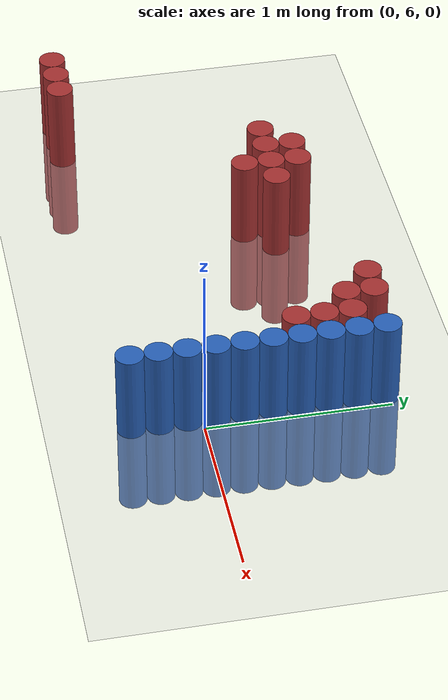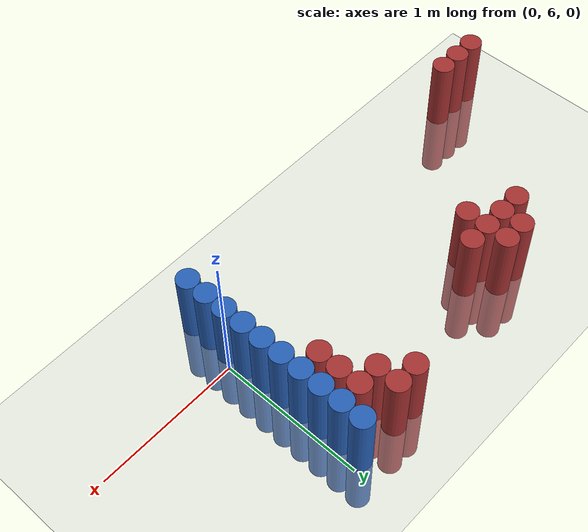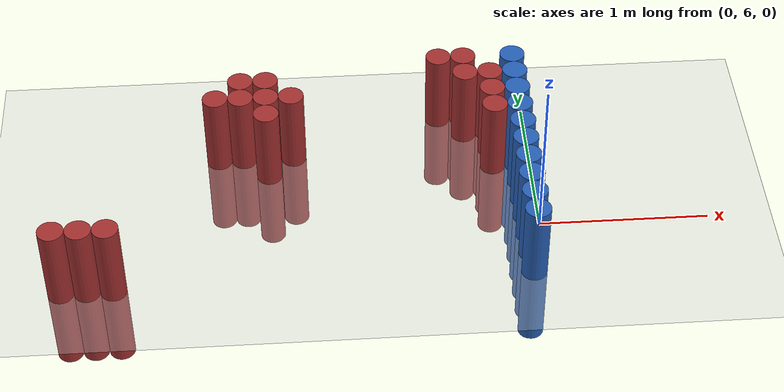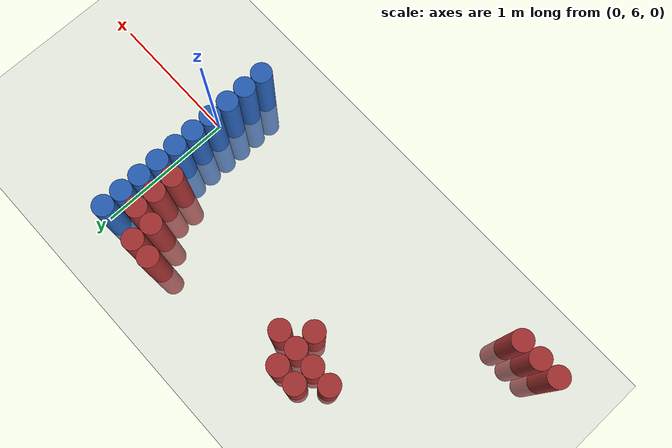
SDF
<sdf version="1.6">
 <world name="default">
  <model name="ground_plane">
   <static>1</static>
   <link name="link">
    <collision name="collision">
     <geometry><plane><normal>0 0 1</normal><size>100 100</size></plane></geometry>
     <surface><friction><ode><mu>100</mu><mu2>50</mu2></ode></friction></surface>
    </collision>
    <visual name="visual">
     <cast_shadows>0</cast_shadows>
     <geometry><plane><normal>0 0 1</normal><size>100 100</size></plane></geometry>
     <material>
      <script><uri>file://media/materials/scripts/gazebo.material</uri><name>Gazebo/Grey</name></script>
     </material>
    </visual>
   </link>
  </model>
  <model name="unit_cylinder_152">
   <static>1</static>
   <pose>-2.775000 5.625000 0.000000 0.000000 0.000000 0.000000</pose>
   <link name="link">
    <inertial>
     <mass>1</mass>
     <inertia><ixx>0.145833</ixx><ixy>0</ixy><ixz>0</ixz><iyy>0.145833</iyy><iyz>0</iyz><izz>0.125</izz></inertia>
    </inertial>
    <collision name="collision">
     <geometry><cylinder><radius>0.075000</radius><length>1</length></cylinder></geometry>
    </collision>
    <visual name="visual">
     <geometry><cylinder><radius>0.075000</radius><length>1</length></cylinder></geometry>
     <material>
      <ambient>0.648000 0.192000 0.192000 1</ambient>
      <diffuse>0.648000 0.192000 0.192000 1</diffuse>
     </material>
     <material>
      <script><name>Gazebo/Grey</name><uri>file://media/materials/scripts/gazebo.material</uri></script>
     </material>
    </visual>
   </link>
  </model>
  <model name="unit_cylinder_154">
   <static>1</static>
   <pose>-2.625000 5.625000 0.000000 0.000000 0.000000 0.000000</pose>
   <link name="link">
    <inertial>
     <mass>1</mass>
     <inertia><ixx>0.145833</ixx><ixy>0</ixy><ixz>0</ixz><iyy>0.145833</iyy><iyz>0</iyz><izz>0.125</izz></inertia>
    </inertial>
    <collision name="collision">
     <geometry><cylinder><radius>0.075000</radius><length>1</length></cylinder></geometry>
    </collision>
    <visual name="visual">
     <geometry><cylinder><radius>0.075000</radius><length>1</length></cylinder></geometry>
     <material>
      <ambient>0.648000 0.192000 0.192000 1</ambient>
      <diffuse>0.648000 0.192000 0.192000 1</diffuse>
     </material>
     <material>
      <script><name>Gazebo/Grey</name><uri>file://media/materials/scripts/gazebo.material</uri></script>
     </material>
    </visual>
   </link>
  </model>
  <model name="unit_cylinder_158">
   <static>1</static>
   <pose>-2.475000 5.625000 0.000000 0.000000 0.000000 0.000000</pose>
   <link name="link">
    <inertial>
     <mass>1</mass>
     <inertia><ixx>0.145833</ixx><ixy>0</ixy><ixz>0</ixz><iyy>0.145833</iyy><iyz>0</iyz><izz>0.125</izz></inertia>
    </inertial>
    <collision name="collision">
     <geometry><cylinder><radius>0.075000</radius><length>1</length></cylinder></geometry>
    </collision>
    <visual name="visual">
     <geometry><cylinder><radius>0.075000</radius><length>1</length></cylinder></geometry>
     <material>
      <ambient>0.648000 0.192000 0.192000 1</ambient>
      <diffuse>0.648000 0.192000 0.192000 1</diffuse>
     </material>
     <material>
      <script><name>Gazebo/Grey</name><uri>file://media/materials/scripts/gazebo.material</uri></script>
     </material>
    </visual>
   </link>
  </model>
  <model name="unit_cylinder_160">
   <static>1</static>
   <pose>-1.875000 6.675000 0.000000 0.000000 0.000000 0.000000</pose>
   <link name="link">
    <inertial>
     <mass>1</mass>
     <inertia><ixx>0.145833</ixx><ixy>0</ixy><ixz>0</ixz><iyy>0.145833</iyy><iyz>0</iyz><izz>0.125</izz></inertia>
    </inertial>
    <collision name="collision">
     <geometry><cylinder><radius>0.075000</radius><length>1</length></cylinder></geometry>
    </collision>
    <visual name="visual">
     <geometry><cylinder><radius>0.075000</radius><length>1</length></cylinder></geometry>
     <material>
      <ambient>0.648000 0.192000 0.192000 1</ambient>
      <diffuse>0.648000 0.192000 0.192000 1</diffuse>
     </material>
     <material>
      <script><name>Gazebo/Grey</name><uri>file://media/materials/scripts/gazebo.material</uri></script>
     </material>
    </visual>
   </link>
  </model>
  <model name="unit_cylinder_161">
   <static>1</static>
   <pose>-1.725000 6.675000 0.000000 0.000000 0.000000 0.000000</pose>
   <link name="link">
    <inertial>
     <mass>1</mass>
     <inertia><ixx>0.145833</ixx><ixy>0</ixy><ixz>0</ixz><iyy>0.145833</iyy><iyz>0</iyz><izz>0.125</izz></inertia>
    </inertial>
    <collision name="collision">
     <geometry><cylinder><radius>0.075000</radius><length>1</length></cylinder></geometry>
    </collision>
    <visual name="visual">
     <geometry><cylinder><radius>0.075000</radius><length>1</length></cylinder></geometry>
     <material>
      <ambient>0.648000 0.192000 0.192000 1</ambient>
      <diffuse>0.648000 0.192000 0.192000 1</diffuse>
     </material>
     <material>
      <script><name>Gazebo/Grey</name><uri>file://media/materials/scripts/gazebo.material</uri></script>
     </material>
    </visual>
   </link>
  </model>
  <model name="unit_cylinder_162">
   <static>1</static>
   <pose>-1.725000 6.825000 0.000000 0.000000 0.000000 0.000000</pose>
   <link name="link">
    <inertial>
     <mass>1</mass>
     <inertia><ixx>0.145833</ixx><ixy>0</ixy><ixz>0</ixz><iyy>0.145833</iyy><iyz>0</iyz><izz>0.125</izz></inertia>
    </inertial>
    <collision name="collision">
     <geometry><cylinder><radius>0.075000</radius><length>1</length></cylinder></geometry>
    </collision>
    <visual name="visual">
     <geometry><cylinder><radius>0.075000</radius><length>1</length></cylinder></geometry>
     <material>
      <ambient>0.648000 0.192000 0.192000 1</ambient>
      <diffuse>0.648000 0.192000 0.192000 1</diffuse>
     </material>
     <material>
      <script><name>Gazebo/Grey</name><uri>file://media/materials/scripts/gazebo.material</uri></script>
     </material>
    </visual>
   </link>
  </model>
  <model name="unit_cylinder_163">
   <static>1</static>
   <pose>-1.575000 6.525000 0.000000 0.000000 0.000000 0.000000</pose>
   <link name="link">
    <inertial>
     <mass>1</mass>
     <inertia><ixx>0.145833</ixx><ixy>0</ixy><ixz>0</ixz><iyy>0.145833</iyy><iyz>0</iyz><izz>0.125</izz></inertia>
    </inertial>
    <collision name="collision">
     <geometry><cylinder><radius>0.075000</radius><length>1</length></cylinder></geometry>
    </collision>
    <visual name="visual">
     <geometry><cylinder><radius>0.075000</radius><length>1</length></cylinder></geometry>
     <material>
      <ambient>0.648000 0.192000 0.192000 1</ambient>
      <diffuse>0.648000 0.192000 0.192000 1</diffuse>
     </material>
     <material>
      <script><name>Gazebo/Grey</name><uri>file://media/materials/scripts/gazebo.material</uri></script>
     </material>
    </visual>
   </link>
  </model>
  <model name="unit_cylinder_164">
   <static>1</static>
   <pose>-1.575000 6.675000 0.000000 0.000000 0.000000 0.000000</pose>
   <link name="link">
    <inertial>
     <mass>1</mass>
     <inertia><ixx>0.145833</ixx><ixy>0</ixy><ixz>0</ixz><iyy>0.145833</iyy><iyz>0</iyz><izz>0.125</izz></inertia>
    </inertial>
    <collision name="collision">
     <geometry><cylinder><radius>0.075000</radius><length>1</length></cylinder></geometry>
    </collision>
    <visual name="visual">
     <geometry><cylinder><radius>0.075000</radius><length>1</length></cylinder></geometry>
     <material>
      <ambient>0.648000 0.192000 0.192000 1</ambient>
      <diffuse>0.648000 0.192000 0.192000 1</diffuse>
     </material>
     <material>
      <script><name>Gazebo/Grey</name><uri>file://media/materials/scripts/gazebo.material</uri></script>
     </material>
    </visual>
   </link>
  </model>
  <model name="unit_cylinder_165">
   <static>1</static>
   <pose>-1.575000 6.825000 0.000000 0.000000 0.000000 0.000000</pose>
   <link name="link">
    <inertial>
     <mass>1</mass>
     <inertia><ixx>0.145833</ixx><ixy>0</ixy><ixz>0</ixz><iyy>0.145833</iyy><iyz>0</iyz><izz>0.125</izz></inertia>
    </inertial>
    <collision name="collision">
     <geometry><cylinder><radius>0.075000</radius><length>1</length></cylinder></geometry>
    </collision>
    <visual name="visual">
     <geometry><cylinder><radius>0.075000</radius><length>1</length></cylinder></geometry>
     <material>
      <ambient>0.648000 0.192000 0.192000 1</ambient>
      <diffuse>0.648000 0.192000 0.192000 1</diffuse>
     </material>
     <material>
      <script><name>Gazebo/Grey</name><uri>file://media/materials/scripts/gazebo.material</uri></script>
     </material>
    </visual>
   </link>
  </model>
  <model name="unit_cylinder_166">
   <static>1</static>
   <pose>-1.425000 6.675000 0.000000 0.000000 0.000000 0.000000</pose>
   <link name="link">
    <inertial>
     <mass>1</mass>
     <inertia><ixx>0.145833</ixx><ixy>0</ixy><ixz>0</ixz><iyy>0.145833</iyy><iyz>0</iyz><izz>0.125</izz></inertia>
    </inertial>
    <collision name="collision">
     <geometry><cylinder><radius>0.075000</radius><length>1</length></cylinder></geometry>
    </collision>
    <visual name="visual">
     <geometry><cylinder><radius>0.075000</radius><length>1</length></cylinder></geometry>
     <material>
      <ambient>0.648000 0.192000 0.192000 1</ambient>
      <diffuse>0.648000 0.192000 0.192000 1</diffuse>
     </material>
     <material>
      <script><name>Gazebo/Grey</name><uri>file://media/materials/scripts/gazebo.material</uri></script>
     </material>
    </visual>
   </link>
  </model>
  <model name="unit_cylinder_167">
   <static>1</static>
   <pose>-0.525000 6.975000 0.000000 0.000000 0.000000 0.000000</pose>
   <link name="link">
    <inertial>
     <mass>1</mass>
     <inertia><ixx>0.145833</ixx><ixy>0</ixy><ixz>0</ixz><iyy>0.145833</iyy><iyz>0</iyz><izz>0.125</izz></inertia>
    </inertial>
    <collision name="collision">
     <geometry><cylinder><radius>0.075000</radius><length>1</length></cylinder></geometry>
    </collision>
    <visual name="visual">
     <geometry><cylinder><radius>0.075000</radius><length>1</length></cylinder></geometry>
     <material>
      <ambient>0.648000 0.192000 0.192000 1</ambient>
      <diffuse>0.648000 0.192000 0.192000 1</diffuse>
     </material>
     <material>
      <script><name>Gazebo/Grey</name><uri>file://media/materials/scripts/gazebo.material</uri></script>
     </material>
    </visual>
   </link>
  </model>
  <model name="unit_cylinder_168">
   <static>1</static>
   <pose>-0.375000 6.825000 0.000000 0.000000 0.000000 0.000000</pose>
   <link name="link">
    <inertial>
     <mass>1</mass>
     <inertia><ixx>0.145833</ixx><ixy>0</ixy><ixz>0</ixz><iyy>0.145833</iyy><iyz>0</iyz><izz>0.125</izz></inertia>
    </inertial>
    <collision name="collision">
     <geometry><cylinder><radius>0.075000</radius><length>1</length></cylinder></geometry>
    </collision>
    <visual name="visual">
     <geometry><cylinder><radius>0.075000</radius><length>1</length></cylinder></geometry>
     <material>
      <ambient>0.648000 0.192000 0.192000 1</ambient>
      <diffuse>0.648000 0.192000 0.192000 1</diffuse>
     </material>
     <material>
      <script><name>Gazebo/Grey</name><uri>file://media/materials/scripts/gazebo.material</uri></script>
     </material>
    </visual>
   </link>
  </model>
  <model name="unit_cylinder_169">
   <static>1</static>
   <pose>-0.375000 6.975000 0.000000 0.000000 0.000000 0.000000</pose>
   <link name="link">
    <inertial>
     <mass>1</mass>
     <inertia><ixx>0.145833</ixx><ixy>0</ixy><ixz>0</ixz><iyy>0.145833</iyy><iyz>0</iyz><izz>0.125</izz></inertia>
    </inertial>
    <collision name="collision">
     <geometry><cylinder><radius>0.075000</radius><length>1</length></cylinder></geometry>
    </collision>
    <visual name="visual">
     <geometry><cylinder><radius>0.075000</radius><length>1</length></cylinder></geometry>
     <material>
      <ambient>0.648000 0.192000 0.192000 1</ambient>
      <diffuse>0.648000 0.192000 0.192000 1</diffuse>
     </material>
     <material>
      <script><name>Gazebo/Grey</name><uri>file://media/materials/scripts/gazebo.material</uri></script>
     </material>
    </visual>
   </link>
  </model>
  <model name="unit_cylinder_171">
   <static>1</static>
   <pose>-0.225000 6.525000 0.000000 0.000000 0.000000 0.000000</pose>
   <link name="link">
    <inertial>
     <mass>1</mass>
     <inertia><ixx>0.145833</ixx><ixy>0</ixy><ixz>0</ixz><iyy>0.145833</iyy><iyz>0</iyz><izz>0.125</izz></inertia>
    </inertial>
    <collision name="collision">
     <geometry><cylinder><radius>0.075000</radius><length>1</length></cylinder></geometry>
    </collision>
    <visual name="visual">
     <geometry><cylinder><radius>0.075000</radius><length>1</length></cylinder></geometry>
     <material>
      <ambient>0.648000 0.192000 0.192000 1</ambient>
      <diffuse>0.648000 0.192000 0.192000 1</diffuse>
     </material>
     <material>
      <script><name>Gazebo/Grey</name><uri>file://media/materials/scripts/gazebo.material</uri></script>
     </material>
    </visual>
   </link>
  </model>
  <model name="unit_cylinder_172">
   <static>1</static>
   <pose>-0.225000 6.675000 0.000000 0.000000 0.000000 0.000000</pose>
   <link name="link">
    <inertial>
     <mass>1</mass>
     <inertia><ixx>0.145833</ixx><ixy>0</ixy><ixz>0</ixz><iyy>0.145833</iyy><iyz>0</iyz><izz>0.125</izz></inertia>
    </inertial>
    <collision name="collision">
     <geometry><cylinder><radius>0.075000</radius><length>1</length></cylinder></geometry>
    </collision>
    <visual name="visual">
     <geometry><cylinder><radius>0.075000</radius><length>1</length></cylinder></geometry>
     <material>
      <ambient>0.648000 0.192000 0.192000 1</ambient>
      <diffuse>0.648000 0.192000 0.192000 1</diffuse>
     </material>
     <material>
      <script><name>Gazebo/Grey</name><uri>file://media/materials/scripts/gazebo.material</uri></script>
     </material>
    </visual>
   </link>
  </model>
  <model name="unit_cylinder_173">
   <static>1</static>
   <pose>-0.225000 6.825000 0.000000 0.000000 0.000000 0.000000</pose>
   <link name="link">
    <inertial>
     <mass>1</mass>
     <inertia><ixx>0.145833</ixx><ixy>0</ixy><ixz>0</ixz><iyy>0.145833</iyy><iyz>0</iyz><izz>0.125</izz></inertia>
    </inertial>
    <collision name="collision">
     <geometry><cylinder><radius>0.075000</radius><length>1</length></cylinder></geometry>
    </collision>
    <visual name="visual">
     <geometry><cylinder><radius>0.075000</radius><length>1</length></cylinder></geometry>
     <material>
      <ambient>0.648000 0.192000 0.192000 1</ambient>
      <diffuse>0.648000 0.192000 0.192000 1</diffuse>
     </material>
     <material>
      <script><name>Gazebo/Grey</name><uri>file://media/materials/scripts/gazebo.material</uri></script>
     </material>
    </visual>
   </link>
  </model>
  <model name="unit_cylinder_183">
   <static>1</static>
   <pose>-0.075000 5.625000 0.000000 0.000000 0.000000 0.000000</pose>
   <link name="link">
    <inertial>
     <mass>1</mass>
     <inertia><ixx>0.145833</ixx><ixy>0</ixy><ixz>0</ixz><iyy>0.145833</iyy><iyz>0</iyz><izz>0.125</izz></inertia>
    </inertial>
    <collision name="collision">
     <geometry><cylinder><radius>0.075000</radius><length>1</length></cylinder></geometry>
    </collision>
    <visual name="visual">
     <geometry><cylinder><radius>0.075000</radius><length>1</length></cylinder></geometry>
     <material>
      <ambient>0.152000 0.379000 0.720000 1</ambient>
      <diffuse>0.152000 0.379000 0.720000 1</diffuse>
     </material>
     <material>
      <script><name>Gazebo/Grey</name><uri>file://media/materials/scripts/gazebo.material</uri></script>
     </material>
    </visual>
   </link>
  </model>
  <model name="unit_cylinder_184">
   <static>1</static>
   <pose>-0.075000 5.775000 0.000000 0.000000 0.000000 0.000000</pose>
   <link name="link">
    <inertial>
     <mass>1</mass>
     <inertia><ixx>0.145833</ixx><ixy>0</ixy><ixz>0</ixz><iyy>0.145833</iyy><iyz>0</iyz><izz>0.125</izz></inertia>
    </inertial>
    <collision name="collision">
     <geometry><cylinder><radius>0.075000</radius><length>1</length></cylinder></geometry>
    </collision>
    <visual name="visual">
     <geometry><cylinder><radius>0.075000</radius><length>1</length></cylinder></geometry>
     <material>
      <ambient>0.152000 0.379000 0.720000 1</ambient>
      <diffuse>0.152000 0.379000 0.720000 1</diffuse>
     </material>
     <material>
      <script><name>Gazebo/Grey</name><uri>file://media/materials/scripts/gazebo.material</uri></script>
     </material>
    </visual>
   </link>
  </model>
  <model name="unit_cylinder_185">
   <static>1</static>
   <pose>-0.075000 5.925000 0.000000 0.000000 0.000000 0.000000</pose>
   <link name="link">
    <inertial>
     <mass>1</mass>
     <inertia><ixx>0.145833</ixx><ixy>0</ixy><ixz>0</ixz><iyy>0.145833</iyy><iyz>0</iyz><izz>0.125</izz></inertia>
    </inertial>
    <collision name="collision">
     <geometry><cylinder><radius>0.075000</radius><length>1</length></cylinder></geometry>
    </collision>
    <visual name="visual">
     <geometry><cylinder><radius>0.075000</radius><length>1</length></cylinder></geometry>
     <material>
      <ambient>0.152000 0.379000 0.720000 1</ambient>
      <diffuse>0.152000 0.379000 0.720000 1</diffuse>
     </material>
     <material>
      <script><name>Gazebo/Grey</name><uri>file://media/materials/scripts/gazebo.material</uri></script>
     </material>
    </visual>
   </link>
  </model>
  <model name="unit_cylinder_186">
   <static>1</static>
   <pose>-0.075000 6.075000 0.000000 0.000000 0.000000 0.000000</pose>
   <link name="link">
    <inertial>
     <mass>1</mass>
     <inertia><ixx>0.145833</ixx><ixy>0</ixy><ixz>0</ixz><iyy>0.145833</iyy><iyz>0</iyz><izz>0.125</izz></inertia>
    </inertial>
    <collision name="collision">
     <geometry><cylinder><radius>0.075000</radius><length>1</length></cylinder></geometry>
    </collision>
    <visual name="visual">
     <geometry><cylinder><radius>0.075000</radius><length>1</length></cylinder></geometry>
     <material>
      <ambient>0.152000 0.379000 0.720000 1</ambient>
      <diffuse>0.152000 0.379000 0.720000 1</diffuse>
     </material>
     <material>
      <script><name>Gazebo/Grey</name><uri>file://media/materials/scripts/gazebo.material</uri></script>
     </material>
    </visual>
   </link>
  </model>
  <model name="unit_cylinder_187">
   <static>1</static>
   <pose>-0.075000 6.225000 0.000000 0.000000 0.000000 0.000000</pose>
   <link name="link">
    <inertial>
     <mass>1</mass>
     <inertia><ixx>0.145833</ixx><ixy>0</ixy><ixz>0</ixz><iyy>0.145833</iyy><iyz>0</iyz><izz>0.125</izz></inertia>
    </inertial>
    <collision name="collision">
     <geometry><cylinder><radius>0.075000</radius><length>1</length></cylinder></geometry>
    </collision>
    <visual name="visual">
     <geometry><cylinder><radius>0.075000</radius><length>1</length></cylinder></geometry>
     <material>
      <ambient>0.152000 0.379000 0.720000 1</ambient>
      <diffuse>0.152000 0.379000 0.720000 1</diffuse>
     </material>
     <material>
      <script><name>Gazebo/Grey</name><uri>file://media/materials/scripts/gazebo.material</uri></script>
     </material>
    </visual>
   </link>
  </model>
  <model name="unit_cylinder_188">
   <static>1</static>
   <pose>-0.075000 6.375000 0.000000 0.000000 0.000000 0.000000</pose>
   <link name="link">
    <inertial>
     <mass>1</mass>
     <inertia><ixx>0.145833</ixx><ixy>0</ixy><ixz>0</ixz><iyy>0.145833</iyy><iyz>0</iyz><izz>0.125</izz></inertia>
    </inertial>
    <collision name="collision">
     <geometry><cylinder><radius>0.075000</radius><length>1</length></cylinder></geometry>
    </collision>
    <visual name="visual">
     <geometry><cylinder><radius>0.075000</radius><length>1</length></cylinder></geometry>
     <material>
      <ambient>0.152000 0.379000 0.720000 1</ambient>
      <diffuse>0.152000 0.379000 0.720000 1</diffuse>
     </material>
     <material>
      <script><name>Gazebo/Grey</name><uri>file://media/materials/scripts/gazebo.material</uri></script>
     </material>
    </visual>
   </link>
  </model>
  <model name="unit_cylinder_189">
   <static>1</static>
   <pose>-0.075000 6.525000 0.000000 0.000000 0.000000 0.000000</pose>
   <link name="link">
    <inertial>
     <mass>1</mass>
     <inertia><ixx>0.145833</ixx><ixy>0</ixy><ixz>0</ixz><iyy>0.145833</iyy><iyz>0</iyz><izz>0.125</izz></inertia>
    </inertial>
    <collision name="collision">
     <geometry><cylinder><radius>0.075000</radius><length>1</length></cylinder></geometry>
    </collision>
    <visual name="visual">
     <geometry><cylinder><radius>0.075000</radius><length>1</length></cylinder></geometry>
     <material>
      <ambient>0.152000 0.379000 0.720000 1</ambient>
      <diffuse>0.152000 0.379000 0.720000 1</diffuse>
     </material>
     <material>
      <script><name>Gazebo/Grey</name><uri>file://media/materials/scripts/gazebo.material</uri></script>
     </material>
    </visual>
   </link>
  </model>
  <model name="unit_cylinder_190">
   <static>1</static>
   <pose>-0.075000 6.675000 0.000000 0.000000 0.000000 0.000000</pose>
   <link name="link">
    <inertial>
     <mass>1</mass>
     <inertia><ixx>0.145833</ixx><ixy>0</ixy><ixz>0</ixz><iyy>0.145833</iyy><iyz>0</iyz><izz>0.125</izz></inertia>
    </inertial>
    <collision name="collision">
     <geometry><cylinder><radius>0.075000</radius><length>1</length></cylinder></geometry>
    </collision>
    <visual name="visual">
     <geometry><cylinder><radius>0.075000</radius><length>1</length></cylinder></geometry>
     <material>
      <ambient>0.152000 0.379000 0.720000 1</ambient>
      <diffuse>0.152000 0.379000 0.720000 1</diffuse>
     </material>
     <material>
      <script><name>Gazebo/Grey</name><uri>file://media/materials/scripts/gazebo.material</uri></script>
     </material>
    </visual>
   </link>
  </model>
  <model name="unit_cylinder_191">
   <static>1</static>
   <pose>-0.075000 6.825000 0.000000 0.000000 0.000000 0.000000</pose>
   <link name="link">
    <inertial>
     <mass>1</mass>
     <inertia><ixx>0.145833</ixx><ixy>0</ixy><ixz>0</ixz><iyy>0.145833</iyy><iyz>0</iyz><izz>0.125</izz></inertia>
    </inertial>
    <collision name="collision">
     <geometry><cylinder><radius>0.075000</radius><length>1</length></cylinder></geometry>
    </collision>
    <visual name="visual">
     <geometry><cylinder><radius>0.075000</radius><length>1</length></cylinder></geometry>
     <material>
      <ambient>0.152000 0.379000 0.720000 1</ambient>
      <diffuse>0.152000 0.379000 0.720000 1</diffuse>
     </material>
     <material>
      <script><name>Gazebo/Grey</name><uri>file://media/materials/scripts/gazebo.material</uri></script>
     </material>
    </visual>
   </link>
  </model>
  <model name="unit_cylinder_192">
   <static>1</static>
   <pose>-0.075000 6.975000 0.000000 0.000000 0.000000 0.000000</pose>
   <link name="link">
    <inertial>
     <mass>1</mass>
     <inertia><ixx>0.145833</ixx><ixy>0</ixy><ixz>0</ixz><iyy>0.145833</iyy><iyz>0</iyz><izz>0.125</izz></inertia>
    </inertial>
    <collision name="collision">
     <geometry><cylinder><radius>0.075000</radius><length>1</length></cylinder></geometry>
    </collision>
    <visual name="visual">
     <geometry><cylinder><radius>0.075000</radius><length>1</length></cylinder></geometry>
     <material>
      <ambient>0.152000 0.379000 0.720000 1</ambient>
      <diffuse>0.152000 0.379000 0.720000 1</diffuse>
     </material>
     <material>
      <script><name>Gazebo/Grey</name><uri>file://media/materials/scripts/gazebo.material</uri></script>
     </material>
    </visual>
   </link>
  </model>
 </world>
</sdf>
